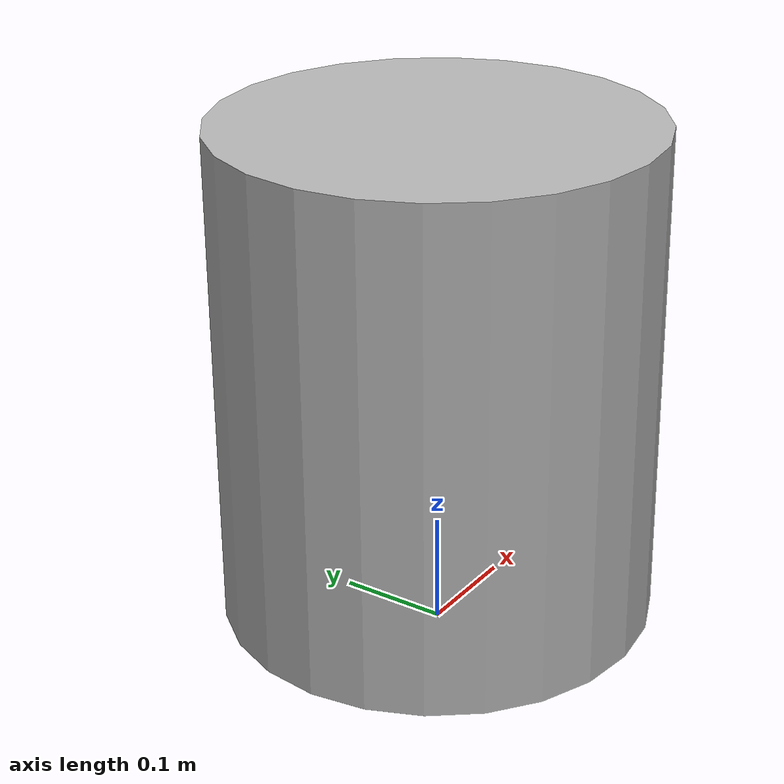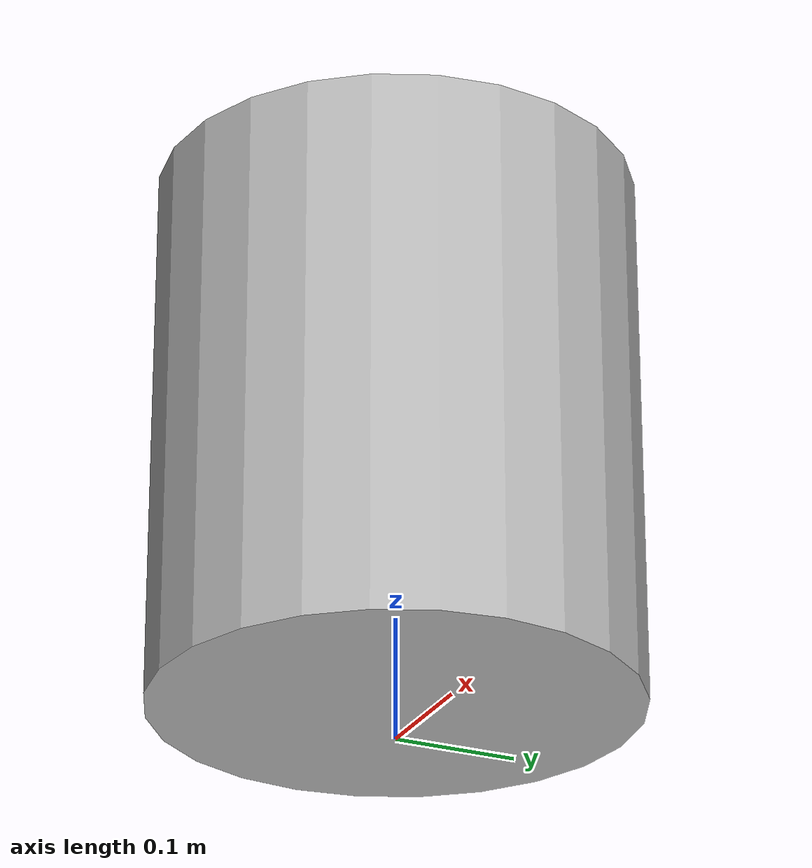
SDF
<?xml version="1.0"?>
<sdf version="1.6">
  <model name="impuls/trashbin">
    <link name="1_link">
      <collision name="1_col">
        <geometry>
          <cylinder>
            <length>0.45</length>
            <radius>0.195</radius>
          </cylinder>
        </geometry>
      </collision>
      <visual name="1_vis">
        <geometry>
          <cylinder>
            <length>0.45</length>
            <radius>0.195</radius>
          </cylinder>
        </geometry>
      </visual>
      <pose>0 0 0.25 0 0 0</pose>
    </link>
    <static>true</static>
    <link name="on_top_of">
      <virtual_volume name="on_top_of_vv">
        <geometry>
          <box>
            <size>0.3 0.3 0.17</size>
          </box>
        </geometry>
        <pose>0.0 0.0 0.5 0 0 0</pose>
      </virtual_volume>
    </link>
    <link name="in_front_of">
      <virtual_volume name="in_front_of_vv">
        <geometry>
          <box>
            <size>0.05 0.05 0.01</size>
          </box>
        </geometry>
      </virtual_volume>
      <pose>0.65 0 0 0 0 0</pose>
    </link>
  </model>
</sdf>
